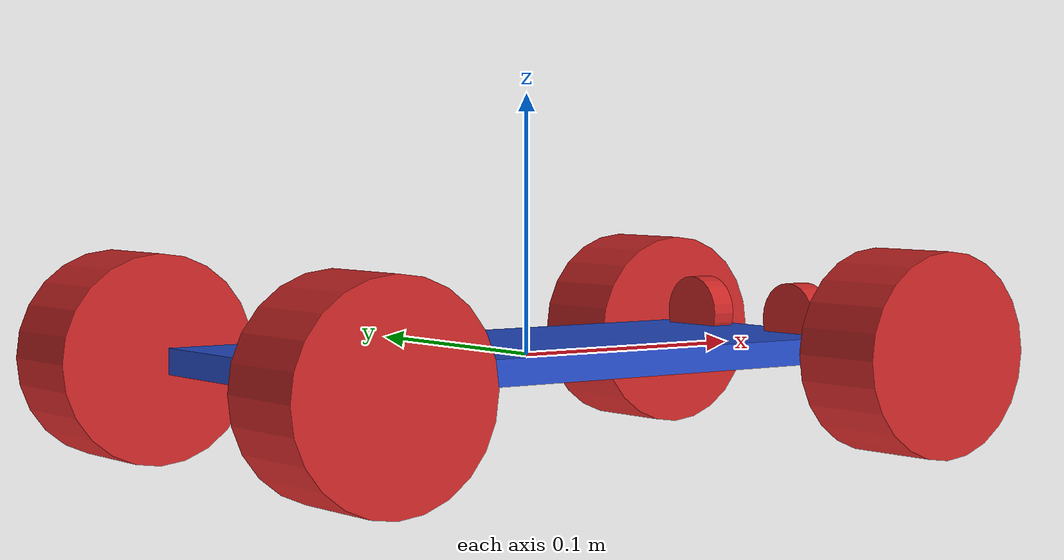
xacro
<?xml version="1.0"?>

<robot name="ackermann" xmlns:xacro="http://www.ros.org/wiki/xacro">
  <xacro:include filename="$(find ackermann)/urdf/cylinder_wheel.urdf.xacro"/>
  <xacro:include filename="$(find ackermann)/urdf/sterzanti.xacro"/>
  <xacro:include filename="$(find ackermann)/urdf/fari.xacro"/>

  <!--PROPERTY LIST-->
  <!--All units in m-kg-s-radians unit system -->
  <xacro:property name="M_PI" value="3.1415926535897931"/>
  <xacro:property name="M_PI_2" value="1.570796327"/>
  <xacro:property name="DEG_TO_RAD" value="0.017453293"/>
  <!--Main Body box base  (z y x)-->
  <xacro:property name="height" value="0.01"/>
  <xacro:property name="width" value="0.110"/>
  <xacro:property name="depth" value="0.25"/>
  <xacro:property name="mass" value="5"/> <!-- in kg -->

  <xacro:macro name="solid_cuboid_inertial" params="width depth height mass">
      <inertia ixx="${mass * (depth * depth + height * height) / 12}"
               ixy="0" ixz="0"
               iyy="${mass * (width * width + height * height) / 12}"
               iyz="0"
               izz="${mass * (width * width + depth * depth) / 12}"/>
  </xacro:macro>

  <link name="base_link">
    <visual>
      <geometry>
      <box size="${depth} ${width} ${height}"/>
      </geometry>
      <origin rpy="0 0 0" xyz="0 0 0"/>
      <material name="blue"/>
    </visual>
    <collision>
      <geometry>
      <box size="0.25 0.110 0.01" />
      </geometry>
    </collision>
      <inertial>
        <mass value="${mass}" />
        <solid_cuboid_inertial width='${width}' depth='${depth}' height='${height}' mass='${mass}' />
      </inertial>
  </link>

  <cylinder_wheel fb="rear" lr="right" parent="base_link" translateX="-0.5" translateY="0.272" flipY="1"/>
  <cylinder_wheel fb="rear" lr="left" parent="base_link" translateX="-0.5" translateY="-0.272" flipY="1"/>

  <cylinder_steering_wheel fb="front" lr="right" parent="base_link" translateX="0.5" translateY="0.272" flipY="1"/>
  <cylinder_steering_wheel fb="front" lr="left" parent="base_link" translateX="0.5" translateY="-0.272" flipY="1"/>

  <faro fb ="front" lr="right" parent="base_link" translateX="0.45" translateY="0.1" flipY="1" />
  <faro fb ="front" lr="left" parent="base_link" translateX="0.45" translateY="-0.1" flipY="1" />

  <gazebo>
    <plugin name="gazebo_ros_control" filename="libgazebo_ros_control.so">
    <robotNamespace>/</robotNamespace>
    </plugin>
  </gazebo>

    <gazebo>
        <plugin name="p3d_base_controller" filename="libgazebo_ros_p3d.so">
        <alwaysOn>true</alwaysOn>
        <updateRate>70.0</updateRate>
        <bodyName>base_link</bodyName>
        <topicName>ground_truth/state</topicName>
        <gaussianNoise>0.01</gaussianNoise>
        <frameName>map</frameName>
        <xyzOffsets>0 0 0</xyzOffsets>
        <rpyOffsets>0 0 0</rpyOffsets>
        </plugin>
    </gazebo>
  </robot>

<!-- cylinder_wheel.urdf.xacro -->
<robot name="ackermann" xmlns:xacro="http://www.ros.org/wiki/xacro">

  <!-- Wheels -->
  <xacro:property name="wheel_radius" value="0.04" />
  <xacro:property name="wheel_height" value="0.04" />
  <xacro:property name="wheel_mass" value="2.5" /> <!-- in kg-->

  <xacro:property name="base_x_origin_to_wheel_origin" value="0.25" />
  <xacro:property name="base_y_origin_to_wheel_origin" value="0.3" />
  <xacro:property name="base_z_origin_to_wheel_origin" value="0.0" />

  <xacro:macro name="cylinder_inertia" params="m r h">
    <inertia  ixx="${m*(3*r*r+h*h)/12}" ixy = "0" ixz = "0"
              iyy="${m*(3*r*r+h*h)/12}" iyz = "0"
              izz="${m*r*r/2}" />
  </xacro:macro>

  <xacro:macro name="cylinder_wheel" params="fb lr parent translateX translateY flipY"> <!--fb : front, back ; lr: left, right -->
    <link name="${fb}_${lr}_wheel">
      <visual>
        <origin xyz="0 0 0" rpy="${flipY*M_PI/2} 0  0 " />
        <geometry>
          <cylinder length="${wheel_height}" radius="${wheel_radius}" />
        </geometry>
        <material name="Red" />
      </visual>
      <collision>
        <origin xyz="0 0 0" rpy="${flipY*M_PI/2} 0 0 " />
        <geometry>
          <cylinder length="${wheel_height}" radius="${wheel_radius}" />
        </geometry>
      </collision>
      <inertial>
        <mass value="${wheel_mass}" />
        <origin xyz="0 0 0" />
        <cylinder_inertia  m="${wheel_mass}" r="${wheel_radius}" h="${wheel_height}" />
      </inertial>
    </link>

    <gazebo reference="${fb}_${lr}_wheel">
      <mu1 value="1.0"/>
      <mu2 value="1.0"/>
      <kp  value="10000000.0" />
      <kd  value="1.0" />
      <fdir1 value="1 0 0"/>
      <material>Gazebo/Grey</material>
      <turnGravityOff>false</turnGravityOff>
    </gazebo>

    <joint name="${fb}_${lr}_wheel_joint" type="continuous">
      <parent link="${parent}"/>
      <child link="${fb}_${lr}_wheel"/>
      <origin xyz="${translateX * base_x_origin_to_wheel_origin} ${translateY * base_y_origin_to_wheel_origin} ${base_z_origin_to_wheel_origin}" rpy="0 0 0" />
      <axis xyz="0 1 0" rpy="0  0" />
      <limit effort="100" velocity="100"/>
      <joint_properties damping="0.0" friction="0.0"/>
    </joint>

    <!-- Transmission is important to link the joints and the controller -->
    <transmission name="${fb}_${lr}_wheel_joint_trans">
      <type>transmission_interface/SimpleTransmission</type>
      <joint name="${fb}_${lr}_wheel_joint">
        <hardwareInterface>hardware_interface/VelocityJointInterface</hardwareInterface>
      </joint>
      <actuator name="${fb}_${lr}_wheel_joint_motor">
        <mechanicalReduction>1</mechanicalReduction>
      </actuator>
    </transmission>

  </xacro:macro>
</robot>

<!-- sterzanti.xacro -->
<robot name="ackermann" xmlns:xacro="http://www.ros.org/wiki/xacro">

  <!-- Wheels -->
  <xacro:property name="wheel_radius" value="0.04" />
  <xacro:property name="wheel_height" value="0.04" />
  <xacro:property name="wheel_mass" value="2.5" /> <!-- in kg-->

  <xacro:property name="base_x_origin_to_wheel_origin" value="0.25" />
  <xacro:property name="base_y_origin_to_wheel_origin" value="0.3" />
  <xacro:property name="base_z_origin_to_wheel_origin" value="0.0" />

  <xacro:macro name="cylinder_inertia" params="m r h">
    <inertia  ixx="${m*(3*r*r+h*h)/12}" ixy = "0" ixz = "0"
              iyy="${m*(3*r*r+h*h)/12}" iyz = "0"
              izz="${m*r*r/2}" />
  </xacro:macro>

   <xacro:macro name="null_inertial">
    <inertial>
      <mass value="0.001"/>
      <inertia ixx="0.001" ixy="0" ixz="0" iyy="0.001" iyz="0" izz="0.001"/>
    </inertial>
  </xacro:macro>

  <xacro:macro name="cylinder_steering_wheel" params="fb lr parent translateX translateY flipY"> <!--fb : front, back ; lr: left, right -->

    <link name="${fb}_${lr}_axle_carrier">
      <xacro:null_inertial/>
    </link>

    <link name="${fb}_${lr}_wheel">
      <visual>
        <origin xyz="0 0 0" rpy="${flipY*M_PI/2} 0  0 " />
        <geometry>
          <cylinder length="${wheel_height}" radius="${wheel_radius}" />
        </geometry>
        <material name="Red" />
      </visual>
      <collision>
        <origin xyz="0 0 0" rpy="${flipY*M_PI/2} 0 0 " />
        <geometry>
          <cylinder length="${wheel_height}" radius="${wheel_radius}" />
        </geometry>
      </collision>
      <inertial>
        <mass value="${wheel_mass}" />
        <origin xyz="0 0 0" />
        <cylinder_inertia  m="${wheel_mass}" r="${wheel_radius}" h="${wheel_height}" />
      </inertial>
    </link>

    <gazebo reference="${fb}_${lr}_wheel">
      <mu1 value="1.0"/>
      <mu2 value="1.0"/>
      <kp  value="10000000.0" />
      <kd  value="1.0" />
      <fdir1 value="1 0 0"/>
      <material>Gazebo/Grey</material>
      <turnGravityOff>false</turnGravityOff>
    </gazebo>

    <joint name="${fb}_${lr}_wheel_joint" type="continuous">
      <parent link="${fb}_${lr}_axle_carrier"/>
      <child link="${fb}_${lr}_wheel"/>
      <origin xyz="0 0 0" rpy="0 0 0"/>
      <axis xyz="0 1 0" rpy="0 0 0" />
      <joint_properties damping="0.0" friction="0.0"/>
    </joint>

   <joint name="${fb}_${lr}_steering_wheel_joint" type="revolute">
      <parent link="${parent}"/>
      <child link="${fb}_${lr}_axle_carrier"/>
      <origin xyz="${translateX * base_x_origin_to_wheel_origin} ${translateY * base_y_origin_to_wheel_origin} ${base_z_origin_to_wheel_origin}" rpy="0 0 0" />
      <axis xyz="0 0 1" rpy="0 0 0" />
      <limit lower="-0.78" upper="0.78" effort="100" velocity="100"/>
      <joint_properties damping="0.0" friction="0.0"/>
    </joint>

  <transmission name="${fb}_${lr}_wheel_joint_trans">
    <type>transmission_interface/SimpleTransmission</type>
    <joint name="${fb}_${lr}_steering_wheel_joint">
    <hardwareInterface>hardware_interface/PositionJointInterface</hardwareInterface>
    </joint>
    <actuator name="${fb}_${lr}_wheel_joint_motor">
      <hardwareInterface>hardware_interface/PositionJointInterface</hardwareInterface>
      <mechanicalReduction>1</mechanicalReduction>
    </actuator>
  </transmission>

  <transmission name="${fb}_${lr}_wheel_joint_trans1">
      <type>transmission_interface/SimpleTransmission</type>
      <joint name="${fb}_${lr}_wheel_joint">
        <hardwareInterface>hardware_interface/VelocityJointInterface</hardwareInterface>
      </joint>
      <actuator name="${fb}_${lr}_wheel_joint_motor1">
        <mechanicalReduction>1</mechanicalReduction>
      </actuator>
  </transmission>

  </xacro:macro>
</robot>

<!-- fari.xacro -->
<robot name="ackermann" xmlns:xacro="http://www.ros.org/wiki/xacro">

  <!-- Wheels -->
  <xacro:property name="radius" value="0.015" />
  <xacro:property name="height" value="0.01" />
  <xacro:property name="mass" value="1" /> <!-- in kg-->

  <xacro:property name="base_x_origin_to_wheel_origin" value="0.25" />
  <xacro:property name="base_y_origin_to_wheel_origin" value="0.3" />
  <xacro:property name="base_z_origin_to_light_origin" value="0.01" />

  <xacro:macro name="cylinder_inertia" params="m r h">
    <inertia  ixx="${m*(3*r*r+h*h)/12}" ixy = "0" ixz = "0"
              iyy="${m*(3*r*r+h*h)/12}" iyz = "0"
              izz="${m*r*r/2}" />
  </xacro:macro>

  <xacro:macro name="faro" params="fb lr parent translateX translateY flipY"> <!--fb : front, back ; lr: left, right -->
    <link name="${fb}_${lr}_light">
      <visual>
        <origin xyz="0 0 0" rpy="0 ${flipY*M_PI/2} 0" />
        <geometry>
          <cylinder length="${height}" radius="${radius}" />
        </geometry>
        <material name="Red" />
      </visual>
      <collision>
        <origin xyz="0 0 0" rpy="0 ${flipY*M_PI/2} 0" />
        <geometry>
          <cylinder length="${height}" radius="${radius}" />
        </geometry>
      </collision>
      <inertial>
        <mass value="${mass}" />
        <origin xyz="0 0 0" />
        <cylinder_inertia  m="${mass}" r="${radius}" h="${height}" />
      </inertial>
    </link>

    <gazebo reference="${fb}_${lr}_light">
      <mu1 value="1.0"/>
      <mu2 value="1.0"/>
      <kp  value="10000000.0" />
      <kd  value="1.0" />
      <fdir1 value="1 0 0"/>
      <material>Gazebo/Yellow</material>
      <turnGravityOff>false</turnGravityOff>
    </gazebo>

    <joint name="${fb}_${lr}_light_joint" type="fixed">
      <parent link="${parent}"/>
      <child link="${fb}_${lr}_light"/>
      <origin xyz="${translateX * base_x_origin_to_wheel_origin} ${translateY * base_y_origin_to_wheel_origin} ${base_z_origin_to_light_origin}" rpy="0 0 0" />
      <axis xyz="0 1 0" rpy="0  0" />
      <joint_properties damping="0.0" friction="0.0"/>
    </joint>

  </xacro:macro>
</robot>
